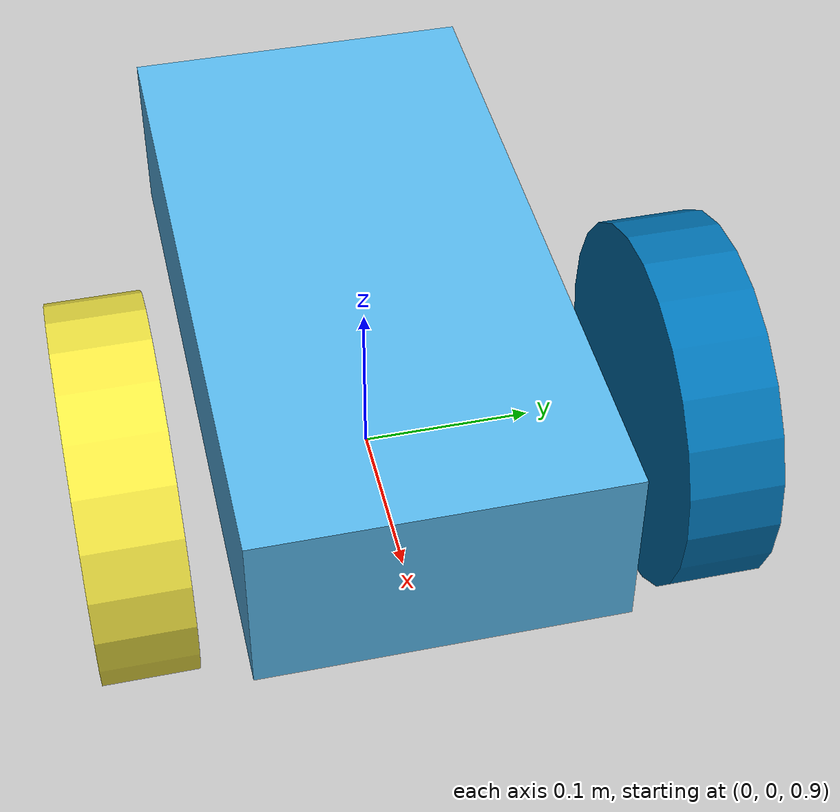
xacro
<?xml version='1.0'?>

<robot name="sctebot" xmlns:xacro="http://www.ros.org/wiki/xacro">

    <!--xacro:include filename="$(find scte_description)/urdf/scte.gazebo" /-->

    <!--naming this link world will fix the model in space-->

    <link name="base_link"/>

    <joint name="base_link" type="fixed">
        <origin xyz="0 0 1" rpy="0 0 0"/>
        <parent link="base_link"/>
        <child link="scte_chassis"/>
    </joint>

    <link name='scte_chassis'>
        <inertial>
            <mass value="10"/>
            <inertia
                    ixx="1" ixy="0" ixz="0"
                    iyy="1" iyz="0"
                    izz="1"
            />
        </inertial>
        <visual name='visual'>
            <origin xyz="0 0 0" rpy="0 0 0"/>
            <geometry>
                <box size=".4 .2 .1"/>
            </geometry>
        </visual>
        <collision name='collision'>
            <origin xyz="0 0 0" rpy="0 0 0"/>
            <geometry>
                <box size=".4 .2 .1"/>
            </geometry>
        </collision>
    </link>

    <link name='caster'>
        <inertial>
            <mass value="1"/>
            <inertia
                    ixx="0.1" ixy="0" ixz="0"
                    iyy="0.1" iyz="0"
                    izz="0.1"
            />
        </inertial>
        <visual name='visual'>
            <origin xyz="0 0 0" rpy="0 0 0"/>
            <geometry>
                <sphere radius="0.05"/>
            </geometry>
        </visual>
        <collision name='collision'>
            <origin xyz="0 0 0" rpy="0 0 0"/>
            <geometry>
                <sphere radius="0.05"/>
            </geometry>
        </collision>
    </link>

    <joint name="caster_JOIN_scte_chassis" type="fixed">
        <origin xyz="-0.15 0 -0.05" rpy="0 0 0"/>
        <parent link="scte_chassis"/>
        <child link="caster"/>
    </joint>

    <link name="right_wheel">
        <inertial>
            <mass value="0.5"/>
            <inertia
                    ixx="1" ixy="0" ixz="0"
                    iyy="1" iyz="0"
                    izz="1"
            />
        </inertial>
        <visual name="visual">
            <geometry>
                <cylinder radius="0.1" length="0.05"/>
            </geometry>
        </visual>
        <collision name='collision'>
            <geometry>
                <cylinder radius="0.1" length="0.05"/>
            </geometry>
        </collision>
    </link>

    <joint name="right_wheel_JOIN_scte_chassis" type="continuous">
        <child link="right_wheel"/>
        <parent link="scte_chassis"/>
        <origin xyz="0.1 -0.15 0" rpy="0 1.5707 1.5707"/>
        <dynamics damping="0.7"/>
        <axis xyz="0 0 1"/>
    </joint>

    <link name="left_wheel">
        <inertial>
            <mass value="0.5"/>
            <inertia
                    ixx="1" ixy="0" ixz="0"
                    iyy="1" iyz="0"
                    izz="1"
            />
        </inertial>
        <visual name="visual">
            <geometry>
                <cylinder radius="0.1" length="0.05"/>
            </geometry>
        </visual>
        <collision name='collision'>
            <geometry>
                <cylinder radius="0.1" length="0.05"/>
            </geometry>
        </collision>
    </link>

    <joint name="left_wheel_JOIN_scte_chassis" type="continuous">
        <child link="left_wheel"/>
        <parent link="scte_chassis"/>
        <origin xyz="0.1 0.15 0" rpy="0 1.5707 1.5707"/>
        <dynamics damping="0.7"/>
        <axis xyz="0 0 1"/>
    </joint>

    <transmission name="tran_left" type="SimpleTransmission">
        <type>transmission_interface/SimpleTransmission</type>
        <actuator name="motor_left_wheel">
            <mechanicalReduction>1</mechanicalReduction>
        </actuator>
        <joint name="left_wheel_JOIN_scte_chassis">
            <hardwareInterface>hardware_interface/VelocityJointInterface</hardwareInterface>
        </joint>
    </transmission>

    <transmission name="tran_right" type="SimpleTransmission">
        <type>transmission_interface/SimpleTransmission</type>
        <actuator name="motor_right_wheel">
            <mechanicalReduction>1</mechanicalReduction>
        </actuator>
        <joint name="right_wheel_JOIN_scte_chassis">
            <hardwareInterface>hardware_interface/VelocityJointInterface</hardwareInterface>
        </joint>
    </transmission>

    <gazebo>
        <plugin name="gazebo_ros_control" filename="libgazebo_ros_control.so">
            <legacyModeNS>true</legacyModeNS>
        </plugin>
    </gazebo>

</robot>
